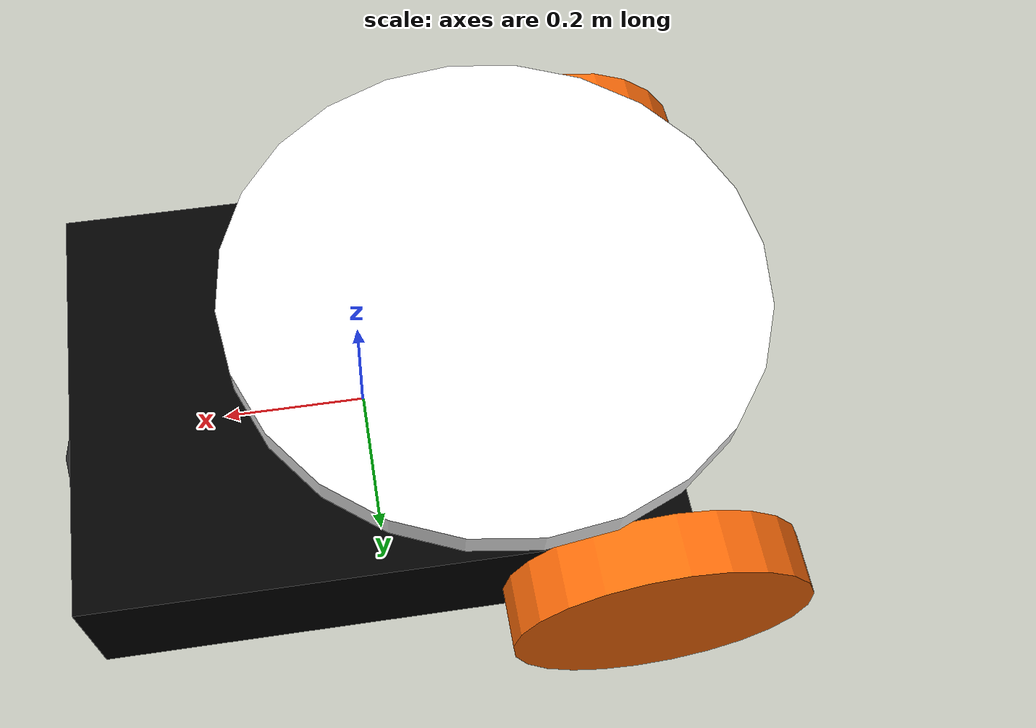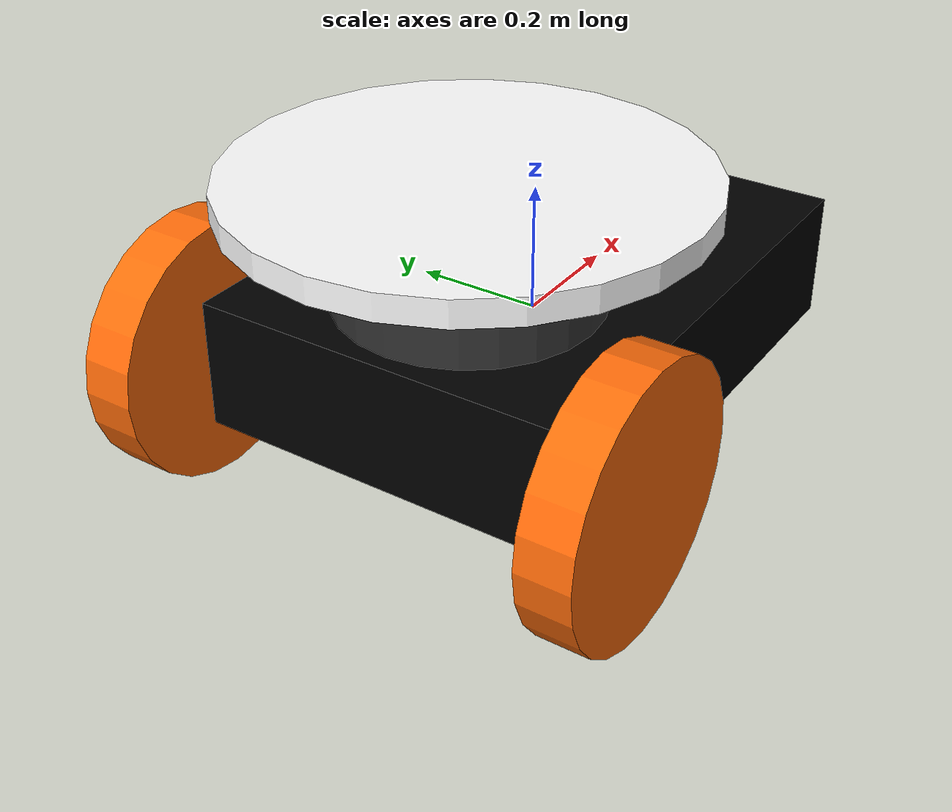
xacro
<?xml version="1.0"?>

<robot name="triwheeler" xmlns:xacro="https://www.ros.org/wiki/xacro" >

    <!-- Included URDF Files -->
    <xacro:include filename="$(find simbot_description)/urdf/triwheeler.urdf.xacro" />

    <!-- Instantiate triwheeler_base_macro once (has no parameters atm) -->
    <xacro:triwheeler_base_macro />

</robot>

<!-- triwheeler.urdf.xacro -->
<robot xmlns:xacro="https://www.ros.org/wiki/xacro" >

    <!-- constants for robot dimensions -->
    <xacro:property name="PI" value="3.1415926535897931"/>
    <!-- properties of chassis link -->
    <xacro:property name="chassis_x" value="0.8" />
    <xacro:property name="chassis_y" value="0.6" />
    <xacro:property name="chassis_z" value="0.2" />
    <xacro:property name="chassis_m" value="4" />
    <!-- properties of plate link -->
    <xacro:property name="plate_r" value="0.35"/>
    <xacro:property name="plate_l" value="0.04"/>
    <xacro:property name="plate_m" value="0.2"/>
    <!-- properties of plate support link -->
    <xacro:property name="support_r" value="0.2"/>
    <xacro:property name="support_l" value="0.15"/>
    <xacro:property name="support_m" value="0.8"/>
    <!-- properties of link_caster -->
    <xacro:property name="caster_r" value="0.1"/>
    <xacro:property name="caster_m" value="0.1"/>
    <!-- properties of wheel -->
    <xacro:property name="wheel_r" value="0.2"/>
    <xacro:property name="wheel_l" value="0.08"/>
    <xacro:property name="wheel_m" value="0.5"/>
    <!-- wheel mounting positions -->
    <xacro:property name="wheelbase" value="0.7" />
    <xacro:property name="track" value="0.7" />

    <!-- import all gazebo-customization elements, including gazebo colors -->
    <!-- import rviz colors -->
    <xacro:include filename="$(find simbot_description)/urdf/materials.urdf.xacro" />

    <!-- main triwheeler link -->
    <xacro:macro name="triwheeler_base_macro">
        <!-- chassis is the center of the robot's bottom plate -->
        <link name="chassis">
            <visual>
                <origin xyz="0 0 0" rpy="0 0 0" />
                <geometry>
                    <box size="${chassis_x} ${chassis_y} ${chassis_z}"/> />
                </geometry>
                <material name="black"/>
            </visual>
            <collision>
                <origin xyz="0 0 0" rpy="0 0 0" />
                <geometry>
                    <box size="${chassis_x} ${chassis_y} ${chassis_z}"/> />
                </geometry>
            </collision>
        </link>
        <!-- kdl does not support a root link with an inertia, create a dummy link only contains inertia of base_link -->
        <joint name="chassis-chassis_inertial" type="fixed">
            <origin xyz="0 0 0" rpy="0 0 0" />
            <parent link="chassis" />
            <child link="chassis_inertial" />
        </joint>
        <link name="chassis_inertial">
            <inertial>
                <mass value="${chassis_m}"/>
                <origin rpy="0 0 0" xyz="0 0 0"/>
                <inertia ixx="${1/12*chassis_m*(chassis_y*chassis_y+chassis_z*chassis_z)}" ixy="0" ixz="0" iyy="${1/12*chassis_m*(chassis_z*chassis_z+chassis_x*chassis_x)}" iyz="0" izz="${1/12*chassis_m*(chassis_x*chassis_x+chassis_y*chassis_y)}"/>
            </inertial>
        </link>

        <!-- left wheel -->
        <joint name="$chassis-left_wheel" type="continuous">
            <origin xyz="-${wheelbase/2} ${track/2} 0" rpy="0 0 0" />
            <parent link="chassis"/>
            <child link="left_wheel"/>
            <axis xyz="0 1 0" rpy="0 0 0" />
        </joint>

        <link name="left_wheel">
            <visual>
                <origin rpy="${PI/2} 0 0" xyz="0 0 0"/>
                <geometry>
                    <cylinder length="${wheel_l}" radius="${wheel_r}"/>
                </geometry>
                <material name="orange"/>
            </visual>
            <collision>
                <origin rpy="${PI/2} 0 0" xyz="0 0 0" />
                <geometry>
                    <cylinder length="${wheel_l}" radius="${wheel_r}"/>
                </geometry>
            </collision>
            <inertial>
                <mass value="${wheel_m}"/>
                <origin rpy="${PI/2} 0 0" xyz="0 0 0"/>
                <inertia ixx="${1/12*wheel_m*(3*wheel_r*wheel_r+wheel_l*wheel_l)}" ixy="0" ixz="0" iyy="${1/12*wheel_m*(3*wheel_r*wheel_r+wheel_l*wheel_l)}" iyz="0" izz="${1/2*wheel_m*wheel_r*wheel_r}"/>
            </inertial>
        </link>

        <!-- right wheel -->
        <joint name="$chassis-right_wheel" type="continuous">
            <origin xyz="-${wheelbase/2} -${track/2} 0" rpy="0 0 0" />
            <parent link="chassis"/>
            <child link="right_wheel"/>
            <axis xyz="0 1 0" rpy="0 0 0" />
        </joint>

        <link name="right_wheel">
            <visual>
                <origin rpy="${PI/2} 0 0" xyz="0 0 0"/>
                <geometry>
                    <cylinder length="${wheel_l}" radius="${wheel_r}"/>
                </geometry>
                <material name="orange"/>
            </visual>
            <collision>
                <origin rpy="${PI/2} 0 0" xyz="0 0 0" />
                <geometry>
                    <cylinder length="${wheel_l}" radius="${wheel_r}"/>
                </geometry>
            </collision>
            <inertial>
                <mass value="${wheel_m}"/>
                <origin rpy="${PI/2} 0 0" xyz="0 0 0"/>
                <inertia ixx="${1/12*wheel_m*(3*wheel_r*wheel_r+wheel_l*wheel_l)}" ixy="0" ixz="0" iyy="${1/12*wheel_m*(3*wheel_r*wheel_r+wheel_l*wheel_l)}" iyz="0" izz="${1/2*wheel_m*wheel_r*wheel_r}"/>
            </inertial>
        </link>

        <!-- caster ball -->
        <joint name="joint_chassis_caster" type="fixed">
            <origin rpy="0 0 0" xyz="${wheelbase/2} 0 -${chassis_z/2}"/>
            <parent link="chassis"/>
            <child link="caster"/>
        </joint>

        <link name="caster">
            <visual>
                <origin rpy="0 0 0" xyz="0 0 0"/>
                <geometry>
                    <sphere radius="${caster_r}"/>
                </geometry>
                <material name="grey"/>
            </visual>
            <collision>
                <origin rpy=" 0 0 0" xyz="0 0 0"/>
                <geometry>
                    <sphere radius="${caster_r}"/>
                </geometry>
            </collision>
            <inertial>
                <mass value="${caster_m}"/>
                <origin rpy="0 0 0" xyz="0 0 0"/>
                <inertia ixx="${2/5*caster_m*caster_r*caster_r}" ixy="0" ixz="0" iyy="${2/5*caster_m*caster_r*caster_r}" iyz="0" izz="${2/5*caster_m*caster_r*caster_r}"/>
            </inertial>
        </link>

        <joint name="chassis-support" type="fixed">
            <origin rpy="0 0 0" xyz="-${wheelbase/4} 0 ${chassis_z/2+support_l/2}"/>
            <parent link="chassis"/>
            <child link="support"/>
        </joint>

        <link name="support">
            <visual>
                <origin rpy="0 0 0" xyz="0 0 0"/>
                <geometry>
                    <cylinder length="${support_l}" radius="${support_r}"/>
                </geometry>
                <material name="grey"/>
            </visual>
            <collision>
                <origin rpy="0 0 0" xyz="0 0 0" />
                <geometry>
                    <cylinder length="${support_l}" radius="${support_r}"/>
                </geometry>
            </collision>
            <inertial>
                <mass value="${support_m}"/>
                <origin rpy="0 0 0" xyz="0 0 0"/>
                <inertia ixx="${1/12*support_m*(3*support_r*support_r+support_l*support_l)}" ixy="0" ixz="0" iyy="${1/12*support_m*(3*support_r*support_r+support_l*support_l)}" iyz="0" izz="${1/2*support_m*support_r*support_r}"/>
            </inertial>
        </link>

        <joint name="support-plate" type="revolute">
            <origin rpy="0 0 0" xyz="0 0 ${support_l/2+plate_l/2}"/>
            <parent link="support"/>
            <child link="plate"/>
            <limit effort="0" lower="0" upper="0" velocity="0"/>
            <axis rpy="0 0 0" xyz="0 0 1"/>
        </joint>

        <link name="plate">
            <visual>
                <origin rpy="0 0 0" xyz="0 0 0"/>
                <geometry>
                    <cylinder length="${plate_l}" radius="${plate_r}"/>
                </geometry>
                <material name="white"/>
            </visual>
            <collision>
                <origin rpy="0 0 0" xyz="0 0 0" />
                <geometry>
                    <cylinder length="${plate_l}" radius="${plate_r}"/>
                </geometry>
            </collision>
            <inertial>
                <mass value="${plate_m}"/>
                <origin rpy="0 0 0" xyz="0 0 0"/>
                <inertia ixx="${1/12*plate_m*(3*plate_r*plate_r+plate_l*plate_l)}" ixy="0" ixz="0" iyy="${1/12*plate_m*(3*plate_r*plate_r+plate_l*plate_l)}" iyz="0" izz="${1/2*plate_m*plate_r*plate_r}"/>
            </inertial>
        </link>

        <joint name="chassis-imu" type="revolute">
            <origin rpy="0 0 0" xyz="${chassis_x/4} 0 ${chassis_z/2}"/>
            <parent link="chassis"/>
            <child link="imu"/>
            <limit lower="0" upper="0" effort="0" velocity="0"/>
            <axis xyz="0 0 1"/>
        </joint>
        <link name="imu"/>

        <transmission name="left_wheel-trans" type="simpletransmission">
            <type>transmission_interface/simpletransmission</type>
            <actuator name="left_wheel-motor">
                <mechanicalreduction>1</mechanicalreduction>
            </actuator>
            <joint name="chassis-left_wheel">
                <hardwareinterface>hardware_interface/velocityjointinterface</hardwareinterface>
            </joint>
        </transmission>

        <transmission name="right_wheel-trans" type="simpletransmission">
            <type>transmission_interface/simpletransmission</type>
            <actuator name="right_wheel-motor">
                <mechanicalreduction>1</mechanicalreduction>
            </actuator>
            <joint name="chassis-right_wheel">
                <hardwareinterface>hardware_interface/velocityjointinterface</hardwareinterface>
            </joint>
        </transmission>

        <gazebo reference="imu">
            <gravity>true</gravity>
            <sensor name="imu_sensor" type="imu">
                <always_on>true</always_on>
                <update_rate>100</update_rate>
                <visualize>true</visualize>
                <topic>__default_topic__</topic>
                <plugin filename="libgazebo_ros_imu_sensor.so" name="imu_plugin">
                    <topicName>imu</topicName>
                    <bodyName>imu_link</bodyName>
                    <updateRateHZ>10.0</updateRateHZ>
                    <gaussianNoise>0.0</gaussianNoise>
                    <xyzOffset>0 0 0</xyzOffset>
                    <rpyOffset>0 0 0</rpyOffset>
                    <frameName>imu_link</frameName>
                </plugin>
                <pose>0 0 0 0 0 0</pose>
            </sensor>
        </gazebo>

    </xacro:macro>

</robot>

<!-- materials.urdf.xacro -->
<robot>

  <material name="black">
    <color rgba="0.0 0.0 0.0 1.0"/>
  </material>

  <material name="blue">
    <color rgba="0.0 0.0 0.8 1.0"/>
  </material>

  <material name="green">
    <color rgba="0.0 0.8 0.0 1.0"/>
  </material>

  <material name="grey">
    <color rgba="0.2 0.2 0.2 1.0"/>
  </material>

  <material name="orange">
    <color rgba="${255/255} ${108/255} ${10/255} 1.0"/>
  </material>

  <material name="brown">
    <color rgba="${222/255} ${207/255} ${195/255} 1.0"/>
  </material>

  <material name="red">
    <color rgba="0.8 0.0 0.0 1.0"/>
  </material>

  <material name="white">
    <color rgba="1.0 1.0 1.0 1.0"/>
  </material>

  <material name="uc_red">
    <color rgba="${224/255} ${1/255} ${34/255} 1.0"/>
  </material>

  <material name="aluminum">
    <color rgba="0.5 0.5 0.5 1"/>
  </material>

</robot>
